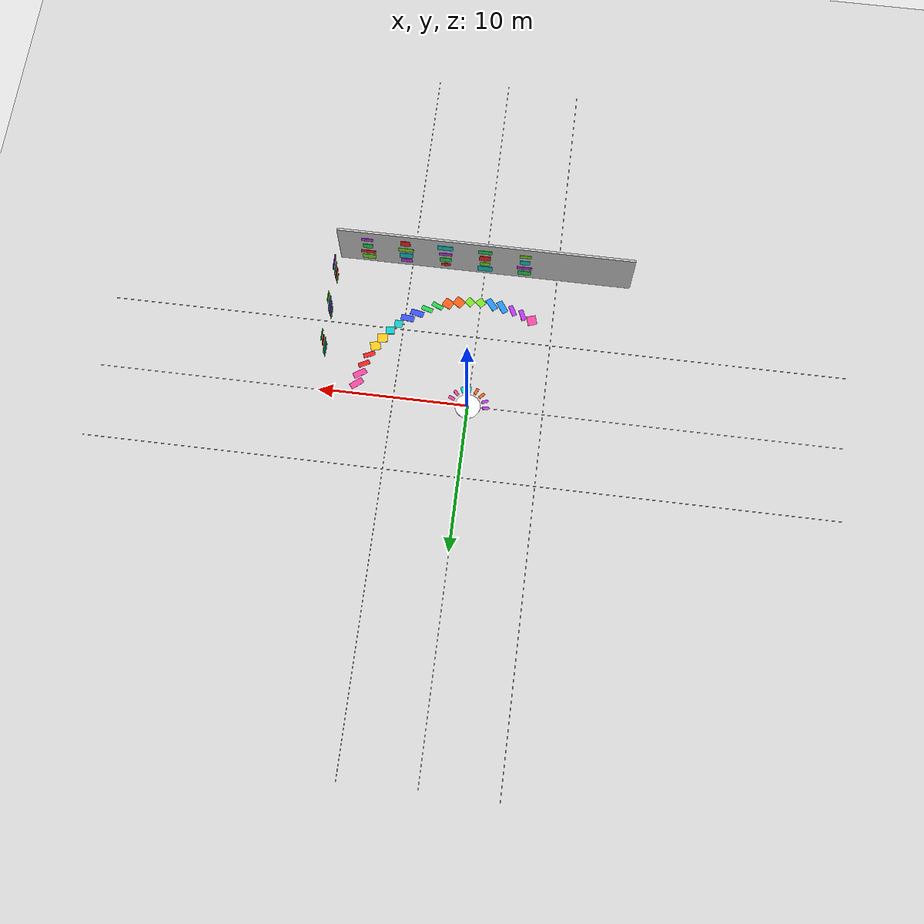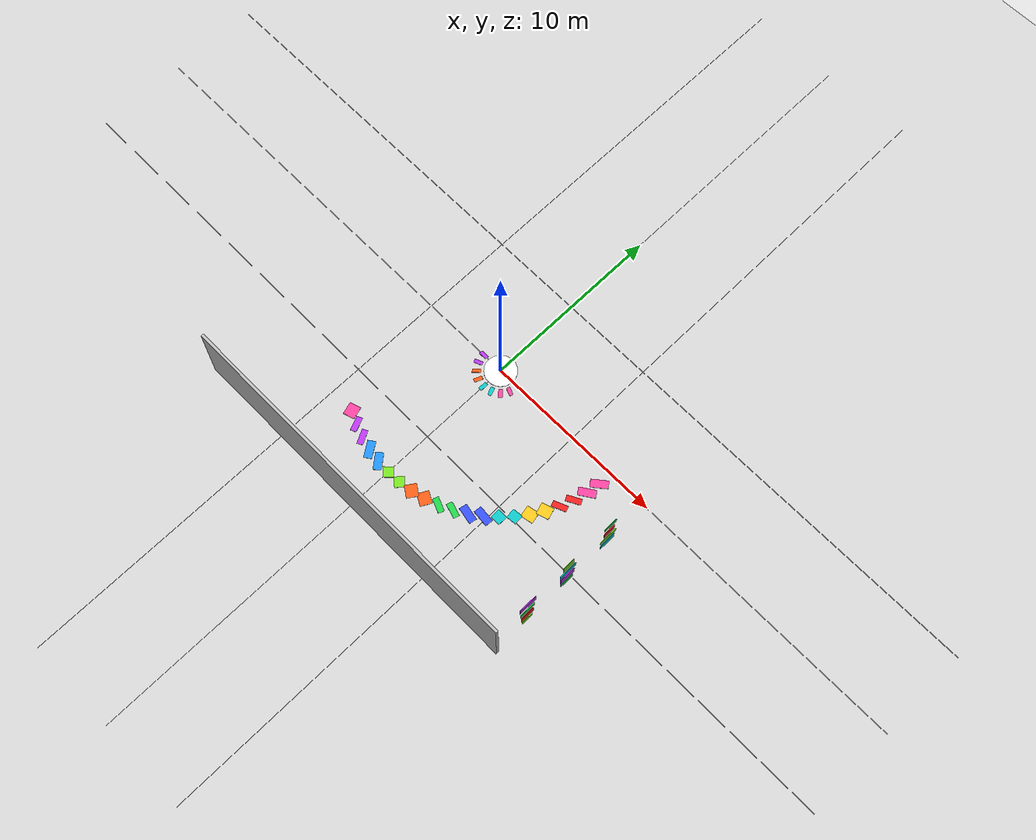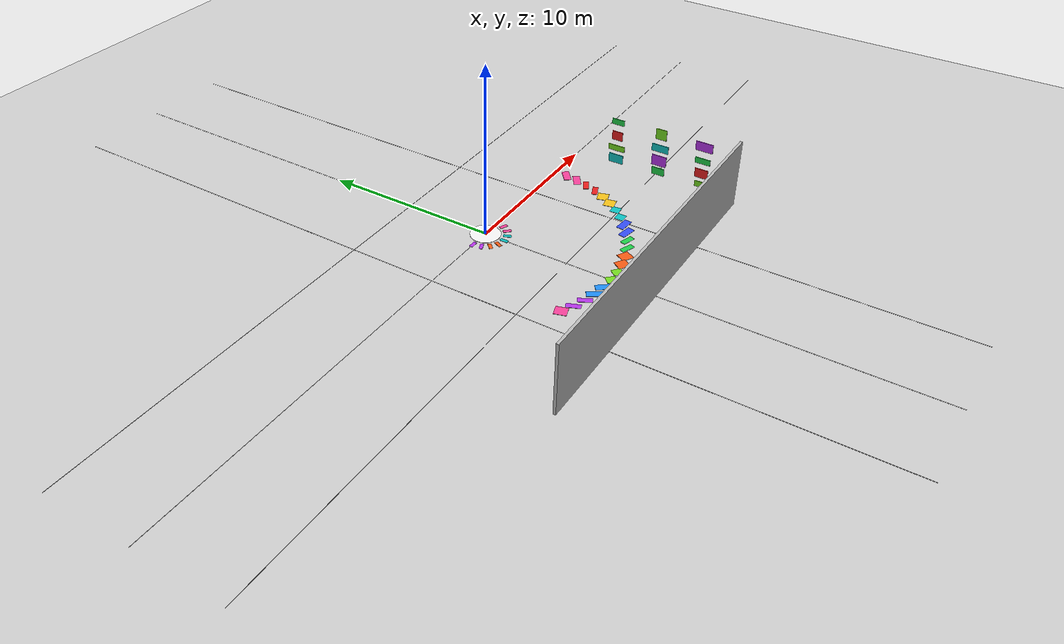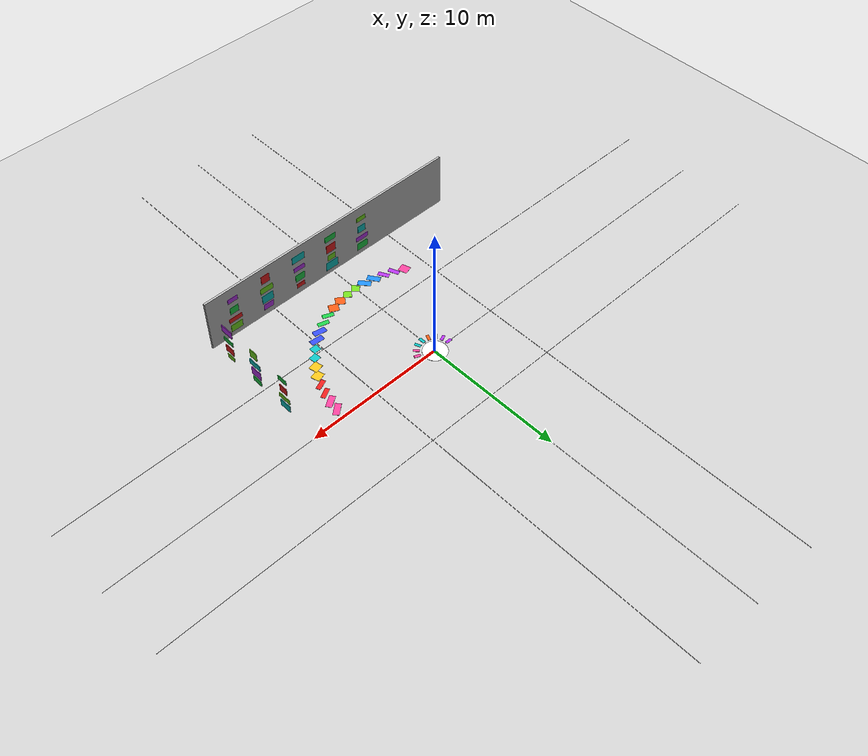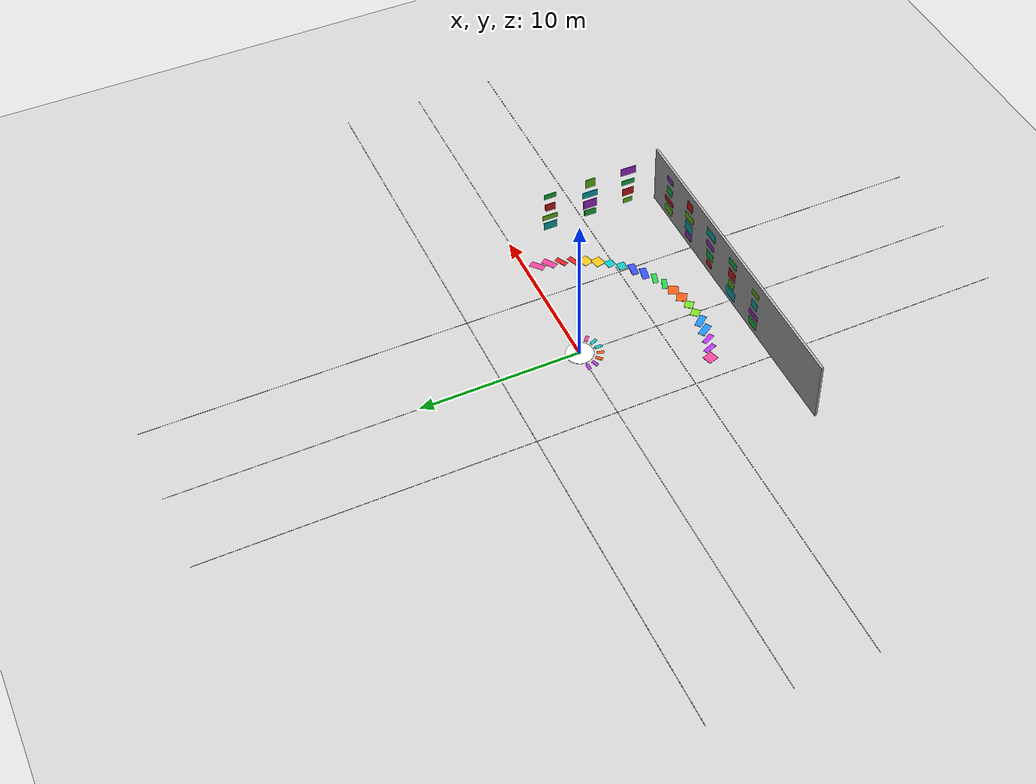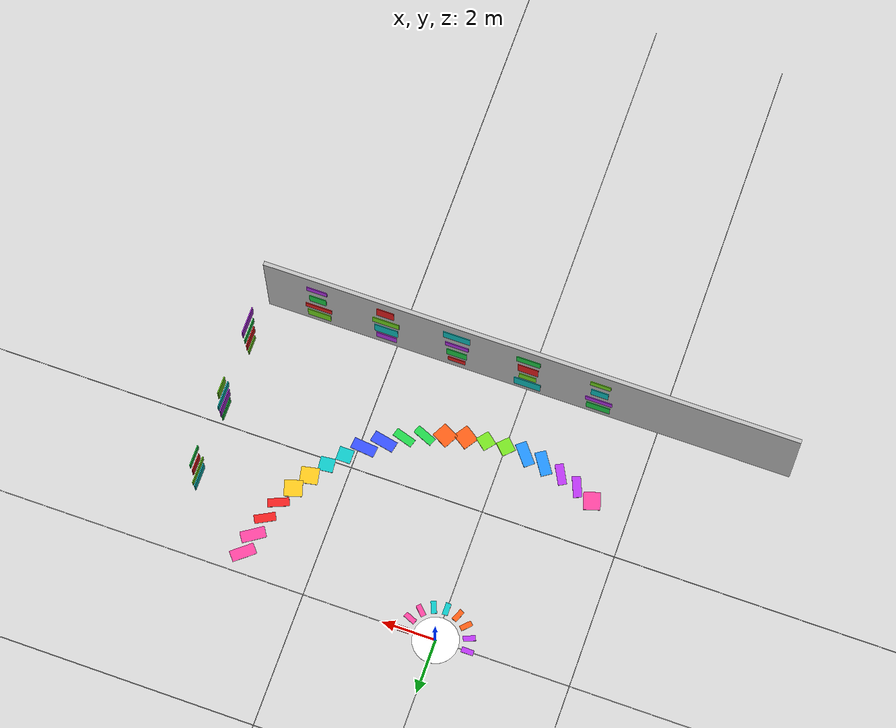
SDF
<sdf version="1.9">
 <world name="vio_marker_arena_double">
  <model name="ground_plane">
   <static>true</static>
   <link name="link">
    <collision name="collision">
     <geometry><plane><normal>0 0 1</normal><size>1 1</size></plane></geometry>
    </collision>
    <visual name="visual">
     <geometry><plane><normal>0 0 1</normal><size>500 500</size></plane></geometry>
     <material>
      <ambient>0.8 0.8 0.8 1</ambient>
      <diffuse>0.8 0.8 0.8 1</diffuse>
      <specular>0.8 0.8 0.8 1</specular>
     </material>
    </visual>
    <inertial>
     <mass>1</mass>
     <inertia><ixx>1</ixx><ixy>0</ixy><ixz>0</ixz><iyy>1</iyy><iyz>0</iyz><izz>1</izz></inertia>
    </inertial>
   </link>
  </model>
  <model name="visual_grid">
   <static>true</static>
   <pose>0 0 0.01 0 0 0</pose>
   <link name="grid_link">
    <visual name="x_line_1">
     <geometry><box><size>50 0.02 0.01</size></box></geometry>
     <material><ambient>0.7 0.7 0.7 1</ambient><diffuse>0.7 0.7 0.7 1</diffuse></material>
    </visual>
    <visual name="y_line_1">
     <pose>0 0 0 0 0 1.5708</pose>
     <geometry><box><size>50 0.02 0.01</size></box></geometry>
     <material><ambient>0.7 0.7 0.7 1</ambient><diffuse>0.7 0.7 0.7 1</diffuse></material>
    </visual>
    <visual name="x_line_5">
     <pose>0 5 0 0 0 0</pose>
     <geometry><box><size>50 0.02 0.01</size></box></geometry>
     <material><ambient>0.5 0.5 0.5 1</ambient><diffuse>0.5 0.5 0.5 1</diffuse></material>
    </visual>
    <visual name="x_line_minus5">
     <pose>0 -5 0 0 0 0</pose>
     <geometry><box><size>50 0.02 0.01</size></box></geometry>
     <material><ambient>0.5 0.5 0.5 1</ambient><diffuse>0.5 0.5 0.5 1</diffuse></material>
    </visual>
    <visual name="y_line_5">
     <pose>5 0 0 0 0 1.5708</pose>
     <geometry><box><size>50 0.02 0.01</size></box></geometry>
     <material><ambient>0.5 0.5 0.5 1</ambient><diffuse>0.5 0.5 0.5 1</diffuse></material>
    </visual>
    <visual name="y_line_minus5">
     <pose>-5 0 0 0 0 1.5708</pose>
     <geometry><box><size>50 0.02 0.01</size></box></geometry>
     <material><ambient>0.5 0.5 0.5 1</ambient><diffuse>0.5 0.5 0.5 1</diffuse></material>
    </visual>
   </link>
  </model>
  <model name="vio_wall_south">
   <static>true</static>
   <pose>0.0000 -10.0000 2.0000 0.0000 0.0000 0.0000</pose>
   <link name="link">
    <collision name="collision"><geometry><box><size>20.0000 0.1500 4.0000</size></box></geometry></collision>
    <visual name="visual">
     <geometry><box><size>20.0000 0.1500 4.0000</size></box></geometry>
     <material>
      <ambient>0.720 0.720 0.720 1.000</ambient>
      <diffuse>0.720 0.720 0.720 1.000</diffuse>
      <specular>0.10 0.10 0.10 1</specular>
      <emissive>0 0 0 1</emissive>
     </material>
    </visual>
   </link>
  </model>
  <model name="vio_panel_south_0_2">
   <static>true</static>
   <pose>-2.7000 -9.9190 0.6500 0.0000 0.0000 0.0000</pose>
   <link name="link">
    <visual name="visual">
     <geometry><box><size>0.8900 0.0350 0.5500</size></box></geometry>
     <material>
      <ambient>0.120 0.800 0.280 1.000</ambient>
      <diffuse>0.120 0.800 0.280 1.000</diffuse>
      <specular>0.10 0.10 0.10 1</specular>
      <emissive>0 0 0 1</emissive>
     </material>
    </visual>
   </link>
  </model>
  <model name="vio_panel_south_0_3">
   <static>true</static>
   <pose>0.0000 -9.9190 0.6500 0.0000 0.0000 0.0000</pose>
   <link name="link">
    <visual name="visual">
     <geometry><box><size>1.0100 0.0350 0.6500</size></box></geometry>
     <material>
      <ambient>0.050 0.750 0.750 1.000</ambient>
      <diffuse>0.050 0.750 0.750 1.000</diffuse>
      <specular>0.10 0.10 0.10 1</specular>
      <emissive>0 0 0 1</emissive>
     </material>
    </visual>
   </link>
  </model>
  <model name="vio_panel_south_0_4">
   <static>true</static>
   <pose>2.7000 -9.9190 0.6500 0.0000 0.0000 0.0000</pose>
   <link name="link">
    <visual name="visual">
     <geometry><box><size>0.6500 0.0350 0.3500</size></box></geometry>
     <material>
      <ambient>0.900 0.120 0.120 1.000</ambient>
      <diffuse>0.900 0.120 0.120 1.000</diffuse>
      <specular>0.10 0.10 0.10 1</specular>
      <emissive>0 0 0 1</emissive>
     </material>
    </visual>
   </link>
  </model>
  <model name="vio_panel_south_0_5">
   <static>true</static>
   <pose>5.4000 -9.9190 0.6500 0.0000 0.0000 0.0000</pose>
   <link name="link">
    <visual name="visual">
     <geometry><box><size>0.7700 0.0350 0.4500</size></box></geometry>
     <material>
      <ambient>0.700 0.200 0.900 1.000</ambient>
      <diffuse>0.700 0.200 0.900 1.000</diffuse>
      <specular>0.10 0.10 0.10 1</specular>
      <emissive>0 0 0 1</emissive>
     </material>
    </visual>
   </link>
  </model>
  <model name="vio_panel_south_0_6">
   <static>true</static>
   <pose>8.0000 -9.9190 0.6500 0.0000 0.0000 0.0000</pose>
   <link name="link">
    <visual name="visual">
     <geometry><box><size>0.8900 0.0350 0.5500</size></box></geometry>
     <material>
      <ambient>0.450 0.850 0.120 1.000</ambient>
      <diffuse>0.450 0.850 0.120 1.000</diffuse>
      <specular>0.10 0.10 0.10 1</specular>
      <emissive>0 0 0 1</emissive>
     </material>
    </visual>
   </link>
  </model>
  <model name="vio_panel_south_1_2">
   <static>true</static>
   <pose>-2.7000 -9.9190 1.3500 0.0000 0.0000 0.0000</pose>
   <link name="link">
    <visual name="visual">
     <geometry><box><size>1.0100 0.0350 0.3500</size></box></geometry>
     <material>
      <ambient>0.700 0.200 0.900 1.000</ambient>
      <diffuse>0.700 0.200 0.900 1.000</diffuse>
      <specular>0.10 0.10 0.10 1</specular>
      <emissive>0 0 0 1</emissive>
     </material>
    </visual>
   </link>
  </model>
  <model name="vio_panel_south_1_3">
   <static>true</static>
   <pose>0.0000 -9.9190 1.3500 0.0000 0.0000 0.0000</pose>
   <link name="link">
    <visual name="visual">
     <geometry><box><size>0.6500 0.0350 0.4500</size></box></geometry>
     <material>
      <ambient>0.450 0.850 0.120 1.000</ambient>
      <diffuse>0.450 0.850 0.120 1.000</diffuse>
      <specular>0.10 0.10 0.10 1</specular>
      <emissive>0 0 0 1</emissive>
     </material>
    </visual>
   </link>
  </model>
  <model name="vio_panel_south_1_4">
   <static>true</static>
   <pose>2.7000 -9.9190 1.3500 0.0000 0.0000 0.0000</pose>
   <link name="link">
    <visual name="visual">
     <geometry><box><size>0.7700 0.0350 0.5500</size></box></geometry>
     <material>
      <ambient>0.120 0.800 0.280 1.000</ambient>
      <diffuse>0.120 0.800 0.280 1.000</diffuse>
      <specular>0.10 0.10 0.10 1</specular>
      <emissive>0 0 0 1</emissive>
     </material>
    </visual>
   </link>
  </model>
  <model name="vio_panel_south_1_5">
   <static>true</static>
   <pose>5.4000 -9.9190 1.3500 0.0000 0.0000 0.0000</pose>
   <link name="link">
    <visual name="visual">
     <geometry><box><size>0.8900 0.0350 0.6500</size></box></geometry>
     <material>
      <ambient>0.050 0.750 0.750 1.000</ambient>
      <diffuse>0.050 0.750 0.750 1.000</diffuse>
      <specular>0.10 0.10 0.10 1</specular>
      <emissive>0 0 0 1</emissive>
     </material>
    </visual>
   </link>
  </model>
  <model name="vio_panel_south_1_6">
   <static>true</static>
   <pose>8.0000 -9.9190 1.3500 0.0000 0.0000 0.0000</pose>
   <link name="link">
    <visual name="visual">
     <geometry><box><size>1.0100 0.0350 0.3500</size></box></geometry>
     <material>
      <ambient>0.900 0.120 0.120 1.000</ambient>
      <diffuse>0.900 0.120 0.120 1.000</diffuse>
      <specular>0.10 0.10 0.10 1</specular>
      <emissive>0 0 0 1</emissive>
     </material>
    </visual>
   </link>
  </model>
  <model name="vio_panel_south_2_2">
   <static>true</static>
   <pose>-2.7000 -9.9190 2.1500 0.0000 0.0000 0.0000</pose>
   <link name="link">
    <visual name="visual">
     <geometry><box><size>0.6500 0.0350 0.5500</size></box></geometry>
     <material>
      <ambient>0.050 0.750 0.750 1.000</ambient>
      <diffuse>0.050 0.750 0.750 1.000</diffuse>
      <specular>0.10 0.10 0.10 1</specular>
      <emissive>0 0 0 1</emissive>
     </material>
    </visual>
   </link>
  </model>
  <model name="vio_panel_south_2_3">
   <static>true</static>
   <pose>0.0000 -9.9190 2.1500 0.0000 0.0000 0.0000</pose>
   <link name="link">
    <visual name="visual">
     <geometry><box><size>0.7700 0.0350 0.6500</size></box></geometry>
     <material>
      <ambient>0.900 0.120 0.120 1.000</ambient>
      <diffuse>0.900 0.120 0.120 1.000</diffuse>
      <specular>0.10 0.10 0.10 1</specular>
      <emissive>0 0 0 1</emissive>
     </material>
    </visual>
   </link>
  </model>
  <model name="vio_panel_south_2_4">
   <static>true</static>
   <pose>2.7000 -9.9190 2.1500 0.0000 0.0000 0.0000</pose>
   <link name="link">
    <visual name="visual">
     <geometry><box><size>0.8900 0.0350 0.3500</size></box></geometry>
     <material>
      <ambient>0.700 0.200 0.900 1.000</ambient>
      <diffuse>0.700 0.200 0.900 1.000</diffuse>
      <specular>0.10 0.10 0.10 1</specular>
      <emissive>0 0 0 1</emissive>
     </material>
    </visual>
   </link>
  </model>
  <model name="vio_panel_south_2_5">
   <static>true</static>
   <pose>5.4000 -9.9190 2.1500 0.0000 0.0000 0.0000</pose>
   <link name="link">
    <visual name="visual">
     <geometry><box><size>1.0100 0.0350 0.4500</size></box></geometry>
     <material>
      <ambient>0.450 0.850 0.120 1.000</ambient>
      <diffuse>0.450 0.850 0.120 1.000</diffuse>
      <specular>0.10 0.10 0.10 1</specular>
      <emissive>0 0 0 1</emissive>
     </material>
    </visual>
   </link>
  </model>
  <model name="vio_panel_south_2_6">
   <static>true</static>
   <pose>8.0000 -9.9190 2.1500 0.0000 0.0000 0.0000</pose>
   <link name="link">
    <visual name="visual">
     <geometry><box><size>0.6500 0.0350 0.5500</size></box></geometry>
     <material>
      <ambient>0.120 0.800 0.280 1.000</ambient>
      <diffuse>0.120 0.800 0.280 1.000</diffuse>
      <specular>0.10 0.10 0.10 1</specular>
      <emissive>0 0 0 1</emissive>
     </material>
    </visual>
   </link>
  </model>
  <model name="vio_panel_south_3_2">
   <static>true</static>
   <pose>-2.7000 -9.9190 3.0500 0.0000 0.0000 0.0000</pose>
   <link name="link">
    <visual name="visual">
     <geometry><box><size>0.7700 0.0350 0.3500</size></box></geometry>
     <material>
      <ambient>0.450 0.850 0.120 1.000</ambient>
      <diffuse>0.450 0.850 0.120 1.000</diffuse>
      <specular>0.10 0.10 0.10 1</specular>
      <emissive>0 0 0 1</emissive>
     </material>
    </visual>
   </link>
  </model>
  <model name="vio_panel_south_3_3">
   <static>true</static>
   <pose>0.0000 -9.9190 3.0500 0.0000 0.0000 0.0000</pose>
   <link name="link">
    <visual name="visual">
     <geometry><box><size>0.8900 0.0350 0.4500</size></box></geometry>
     <material>
      <ambient>0.120 0.800 0.280 1.000</ambient>
      <diffuse>0.120 0.800 0.280 1.000</diffuse>
      <specular>0.10 0.10 0.10 1</specular>
      <emissive>0 0 0 1</emissive>
     </material>
    </visual>
   </link>
  </model>
  <model name="vio_panel_south_3_4">
   <static>true</static>
   <pose>2.7000 -9.9190 3.0500 0.0000 0.0000 0.0000</pose>
   <link name="link">
    <visual name="visual">
     <geometry><box><size>1.0100 0.0350 0.5500</size></box></geometry>
     <material>
      <ambient>0.050 0.750 0.750 1.000</ambient>
      <diffuse>0.050 0.750 0.750 1.000</diffuse>
      <specular>0.10 0.10 0.10 1</specular>
      <emissive>0 0 0 1</emissive>
     </material>
    </visual>
   </link>
  </model>
  <model name="vio_panel_south_3_5">
   <static>true</static>
   <pose>5.4000 -9.9190 3.0500 0.0000 0.0000 0.0000</pose>
   <link name="link">
    <visual name="visual">
     <geometry><box><size>0.6500 0.0350 0.6500</size></box></geometry>
     <material>
      <ambient>0.900 0.120 0.120 1.000</ambient>
      <diffuse>0.900 0.120 0.120 1.000</diffuse>
      <specular>0.10 0.10 0.10 1</specular>
      <emissive>0 0 0 1</emissive>
     </material>
    </visual>
   </link>
  </model>
  <model name="vio_panel_south_3_6">
   <static>true</static>
   <pose>8.0000 -9.9190 3.0500 0.0000 0.0000 0.0000</pose>
   <link name="link">
    <visual name="visual">
     <geometry><box><size>0.7700 0.0350 0.3500</size></box></geometry>
     <material>
      <ambient>0.700 0.200 0.900 1.000</ambient>
      <diffuse>0.700 0.200 0.900 1.000</diffuse>
      <specular>0.10 0.10 0.10 1</specular>
      <emissive>0 0 0 1</emissive>
     </material>
    </visual>
   </link>
  </model>
  <model name="vio_panel_east_0_0">
   <static>true</static>
   <pose>9.9190 -8.0000 0.6500 0.0000 0.0000 0.0000</pose>
   <link name="link">
    <visual name="visual">
     <geometry><box><size>0.0350 0.6500 0.3500</size></box></geometry>
     <material>
      <ambient>0.450 0.850 0.120 1.000</ambient>
      <diffuse>0.450 0.850 0.120 1.000</diffuse>
      <specular>0.10 0.10 0.10 1</specular>
      <emissive>0 0 0 1</emissive>
     </material>
    </visual>
   </link>
  </model>
  <model name="vio_panel_east_0_1">
   <static>true</static>
   <pose>9.9190 -5.4000 0.6500 0.0000 0.0000 0.0000</pose>
   <link name="link">
    <visual name="visual">
     <geometry><box><size>0.0350 0.7700 0.4500</size></box></geometry>
     <material>
      <ambient>0.120 0.800 0.280 1.000</ambient>
      <diffuse>0.120 0.800 0.280 1.000</diffuse>
      <specular>0.10 0.10 0.10 1</specular>
      <emissive>0 0 0 1</emissive>
     </material>
    </visual>
   </link>
  </model>
  <model name="vio_panel_east_0_2">
   <static>true</static>
   <pose>9.9190 -2.7000 0.6500 0.0000 0.0000 0.0000</pose>
   <link name="link">
    <visual name="visual">
     <geometry><box><size>0.0350 0.8900 0.5500</size></box></geometry>
     <material>
      <ambient>0.050 0.750 0.750 1.000</ambient>
      <diffuse>0.050 0.750 0.750 1.000</diffuse>
      <specular>0.10 0.10 0.10 1</specular>
      <emissive>0 0 0 1</emissive>
     </material>
    </visual>
   </link>
  </model>
  <model name="vio_panel_east_1_0">
   <static>true</static>
   <pose>9.9190 -8.0000 1.3500 0.0000 0.0000 0.0000</pose>
   <link name="link">
    <visual name="visual">
     <geometry><box><size>0.0350 0.7700 0.5500</size></box></geometry>
     <material>
      <ambient>0.900 0.120 0.120 1.000</ambient>
      <diffuse>0.900 0.120 0.120 1.000</diffuse>
      <specular>0.10 0.10 0.10 1</specular>
      <emissive>0 0 0 1</emissive>
     </material>
    </visual>
   </link>
  </model>
  <model name="vio_panel_east_1_1">
   <static>true</static>
   <pose>9.9190 -5.4000 1.3500 0.0000 0.0000 0.0000</pose>
   <link name="link">
    <visual name="visual">
     <geometry><box><size>0.0350 0.8900 0.6500</size></box></geometry>
     <material>
      <ambient>0.700 0.200 0.900 1.000</ambient>
      <diffuse>0.700 0.200 0.900 1.000</diffuse>
      <specular>0.10 0.10 0.10 1</specular>
      <emissive>0 0 0 1</emissive>
     </material>
    </visual>
   </link>
  </model>
  <model name="vio_panel_east_1_2">
   <static>true</static>
   <pose>9.9190 -2.7000 1.3500 0.0000 0.0000 0.0000</pose>
   <link name="link">
    <visual name="visual">
     <geometry><box><size>0.0350 1.0100 0.3500</size></box></geometry>
     <material>
      <ambient>0.450 0.850 0.120 1.000</ambient>
      <diffuse>0.450 0.850 0.120 1.000</diffuse>
      <specular>0.10 0.10 0.10 1</specular>
      <emissive>0 0 0 1</emissive>
     </material>
    </visual>
   </link>
  </model>
  <model name="vio_panel_east_2_0">
   <static>true</static>
   <pose>9.9190 -8.0000 2.1500 0.0000 0.0000 0.0000</pose>
   <link name="link">
    <visual name="visual">
     <geometry><box><size>0.0350 0.8900 0.3500</size></box></geometry>
     <material>
      <ambient>0.120 0.800 0.280 1.000</ambient>
      <diffuse>0.120 0.800 0.280 1.000</diffuse>
      <specular>0.10 0.10 0.10 1</specular>
      <emissive>0 0 0 1</emissive>
     </material>
    </visual>
   </link>
  </model>
  <model name="vio_panel_east_2_1">
   <static>true</static>
   <pose>9.9190 -5.4000 2.1500 0.0000 0.0000 0.0000</pose>
   <link name="link">
    <visual name="visual">
     <geometry><box><size>0.0350 1.0100 0.4500</size></box></geometry>
     <material>
      <ambient>0.050 0.750 0.750 1.000</ambient>
      <diffuse>0.050 0.750 0.750 1.000</diffuse>
      <specular>0.10 0.10 0.10 1</specular>
      <emissive>0 0 0 1</emissive>
     </material>
    </visual>
   </link>
  </model>
  <model name="vio_panel_east_2_2">
   <static>true</static>
   <pose>9.9190 -2.7000 2.1500 0.0000 0.0000 0.0000</pose>
   <link name="link">
    <visual name="visual">
     <geometry><box><size>0.0350 0.6500 0.5500</size></box></geometry>
     <material>
      <ambient>0.900 0.120 0.120 1.000</ambient>
      <diffuse>0.900 0.120 0.120 1.000</diffuse>
      <specular>0.10 0.10 0.10 1</specular>
      <emissive>0 0 0 1</emissive>
     </material>
    </visual>
   </link>
  </model>
  <model name="vio_panel_east_3_0">
   <static>true</static>
   <pose>9.9190 -8.0000 3.0500 0.0000 0.0000 0.0000</pose>
   <link name="link">
    <visual name="visual">
     <geometry><box><size>0.0350 1.0100 0.5500</size></box></geometry>
     <material>
      <ambient>0.700 0.200 0.900 1.000</ambient>
      <diffuse>0.700 0.200 0.900 1.000</diffuse>
      <specular>0.10 0.10 0.10 1</specular>
      <emissive>0 0 0 1</emissive>
     </material>
    </visual>
   </link>
  </model>
  <model name="vio_panel_east_3_1">
   <static>true</static>
   <pose>9.9190 -5.4000 3.0500 0.0000 0.0000 0.0000</pose>
   <link name="link">
    <visual name="visual">
     <geometry><box><size>0.0350 0.6500 0.6500</size></box></geometry>
     <material>
      <ambient>0.450 0.850 0.120 1.000</ambient>
      <diffuse>0.450 0.850 0.120 1.000</diffuse>
      <specular>0.10 0.10 0.10 1</specular>
      <emissive>0 0 0 1</emissive>
     </material>
    </visual>
   </link>
  </model>
  <model name="vio_panel_east_3_2">
   <static>true</static>
   <pose>9.9190 -2.7000 3.0500 0.0000 0.0000 0.0000</pose>
   <link name="link">
    <visual name="visual">
     <geometry><box><size>0.0350 0.7700 0.3500</size></box></geometry>
     <material>
      <ambient>0.120 0.800 0.280 1.000</ambient>
      <diffuse>0.120 0.800 0.280 1.000</diffuse>
      <specular>0.10 0.10 0.10 1</specular>
      <emissive>0 0 0 1</emissive>
     </material>
    </visual>
   </link>
  </model>
  <model name="vio_floor_marker_22">
   <static>true</static>
   <pose>-2.9084 -7.0215 0.0120 0.0000 0.0000 5.1051</pose>
   <link name="link">
    <visual name="visual">
     <geometry><box><size>0.7900 0.3200 0.0180</size></box></geometry>
     <material>
      <ambient>0.700 0.200 0.900 1.000</ambient>
      <diffuse>0.700 0.200 0.900 1.000</diffuse>
      <specular>0.10 0.10 0.10 1</specular>
      <emissive>0 0 0 1</emissive>
     </material>
    </visual>
   </link>
  </model>
  <model name="vio_floor_marker_23">
   <static>true</static>
   <pose>-1.4827 -7.4540 0.0120 0.0000 0.0000 5.3014</pose>
   <link name="link">
    <visual name="visual">
     <geometry><box><size>0.9100 0.4200 0.0180</size></box></geometry>
     <material>
      <ambient>0.120 0.550 0.950 1.000</ambient>
      <diffuse>0.120 0.550 0.950 1.000</diffuse>
      <specular>0.10 0.10 0.10 1</specular>
      <emissive>0 0 0 1</emissive>
     </material>
    </visual>
   </link>
  </model>
  <model name="vio_floor_marker_24">
   <static>true</static>
   <pose>-0.0000 -7.6000 0.0120 0.0000 0.0000 5.4978</pose>
   <link name="link">
    <visual name="visual">
     <geometry><box><size>0.5500 0.5200 0.0180</size></box></geometry>
     <material>
      <ambient>0.450 0.850 0.120 1.000</ambient>
      <diffuse>0.450 0.850 0.120 1.000</diffuse>
      <specular>0.10 0.10 0.10 1</specular>
      <emissive>0 0 0 1</emissive>
     </material>
    </visual>
   </link>
  </model>
  <model name="vio_floor_marker_25">
   <static>true</static>
   <pose>1.4827 -7.4540 0.0120 0.0000 0.0000 5.6941</pose>
   <link name="link">
    <visual name="visual">
     <geometry><box><size>0.6700 0.6200 0.0180</size></box></geometry>
     <material>
      <ambient>0.950 0.350 0.080 1.000</ambient>
      <diffuse>0.950 0.350 0.080 1.000</diffuse>
      <specular>0.10 0.10 0.10 1</specular>
      <emissive>0 0 0 1</emissive>
     </material>
    </visual>
   </link>
  </model>
  <model name="vio_floor_marker_26">
   <static>true</static>
   <pose>2.9084 -7.0215 0.0120 0.0000 0.0000 5.8905</pose>
   <link name="link">
    <visual name="visual">
     <geometry><box><size>0.7900 0.3200 0.0180</size></box></geometry>
     <material>
      <ambient>0.120 0.800 0.280 1.000</ambient>
      <diffuse>0.120 0.800 0.280 1.000</diffuse>
      <specular>0.10 0.10 0.10 1</specular>
      <emissive>0 0 0 1</emissive>
     </material>
    </visual>
   </link>
  </model>
  <model name="vio_floor_marker_27">
   <static>true</static>
   <pose>4.2223 -6.3192 0.0120 0.0000 0.0000 6.0868</pose>
   <link name="link">
    <visual name="visual">
     <geometry><box><size>0.9100 0.4200 0.0180</size></box></geometry>
     <material>
      <ambient>0.200 0.300 0.950 1.000</ambient>
      <diffuse>0.200 0.300 0.950 1.000</diffuse>
      <specular>0.10 0.10 0.10 1</specular>
      <emissive>0 0 0 1</emissive>
     </material>
    </visual>
   </link>
  </model>
  <model name="vio_floor_marker_28">
   <static>true</static>
   <pose>5.3740 -5.3740 0.0120 0.0000 0.0000 6.2832</pose>
   <link name="link">
    <visual name="visual">
     <geometry><box><size>0.5500 0.5200 0.0180</size></box></geometry>
     <material>
      <ambient>0.050 0.750 0.750 1.000</ambient>
      <diffuse>0.050 0.750 0.750 1.000</diffuse>
      <specular>0.10 0.10 0.10 1</specular>
      <emissive>0 0 0 1</emissive>
     </material>
    </visual>
   </link>
  </model>
  <model name="vio_floor_marker_29">
   <static>true</static>
   <pose>6.3192 -4.2223 0.0120 0.0000 0.0000 6.4795</pose>
   <link name="link">
    <visual name="visual">
     <geometry><box><size>0.6700 0.6200 0.0180</size></box></geometry>
     <material>
      <ambient>0.950 0.750 0.100 1.000</ambient>
      <diffuse>0.950 0.750 0.100 1.000</diffuse>
      <specular>0.10 0.10 0.10 1</specular>
      <emissive>0 0 0 1</emissive>
     </material>
    </visual>
   </link>
  </model>
  <model name="vio_floor_marker_30">
   <static>true</static>
   <pose>7.0215 -2.9084 0.0120 0.0000 0.0000 6.6759</pose>
   <link name="link">
    <visual name="visual">
     <geometry><box><size>0.7900 0.3200 0.0180</size></box></geometry>
     <material>
      <ambient>0.900 0.120 0.120 1.000</ambient>
      <diffuse>0.900 0.120 0.120 1.000</diffuse>
      <specular>0.10 0.10 0.10 1</specular>
      <emissive>0 0 0 1</emissive>
     </material>
    </visual>
   </link>
  </model>
  <model name="vio_floor_marker_31">
   <static>true</static>
   <pose>7.4540 -1.4827 0.0120 0.0000 0.0000 6.8722</pose>
   <link name="link">
    <visual name="visual">
     <geometry><box><size>0.9100 0.4200 0.0180</size></box></geometry>
     <material>
      <ambient>0.950 0.250 0.600 1.000</ambient>
      <diffuse>0.950 0.250 0.600 1.000</diffuse>
      <specular>0.10 0.10 0.10 1</specular>
      <emissive>0 0 0 1</emissive>
     </material>
    </visual>
   </link>
  </model>
  <model name="vio_center_target">
   <static>true</static>
   <pose>0.0000 0.0000 0.0120 0.0000 0.0000 0.0000</pose>
   <link name="link">
    <visual name="visual">
     <geometry><cylinder><radius>0.8500</radius><length>0.0200</length></cylinder></geometry>
     <material>
      <ambient>0.950 0.950 0.950 1.000</ambient>
      <diffuse>0.950 0.950 0.950 1.000</diffuse>
      <specular>0.10 0.10 0.10 1</specular>
      <emissive>0 0 0 1</emissive>
     </material>
    </visual>
   </link>
  </model>
  <model name="vio_center_marker_0">
   <static>true</static>
   <pose>1.2000 0.0000 0.0130 0.0000 0.0000 0.0000</pose>
   <link name="link">
    <visual name="visual">
     <geometry><box><size>0.4500 0.2000 0.0200</size></box></geometry>
     <material>
      <ambient>0.900 0.120 0.120 1.000</ambient>
      <diffuse>0.900 0.120 0.120 1.000</diffuse>
      <specular>0.10 0.10 0.10 1</specular>
      <emissive>0 0 0 1</emissive>
     </material>
    </visual>
   </link>
  </model>
  <model name="vio_center_marker_4">
   <static>true</static>
   <pose>-1.2000 0.0000 0.0130 0.0000 0.0000 3.1416</pose>
   <link name="link">
    <visual name="visual">
     <geometry><box><size>0.4500 0.2000 0.0200</size></box></geometry>
     <material>
      <ambient>0.700 0.200 0.900 1.000</ambient>
      <diffuse>0.700 0.200 0.900 1.000</diffuse>
      <specular>0.10 0.10 0.10 1</specular>
      <emissive>0 0 0 1</emissive>
     </material>
    </visual>
   </link>
  </model>
  <model name="vio_center_marker_5">
   <static>true</static>
   <pose>-0.8485 -0.8485 0.0130 0.0000 0.0000 3.9270</pose>
   <link name="link">
    <visual name="visual">
     <geometry><box><size>0.4500 0.2000 0.0200</size></box></geometry>
     <material>
      <ambient>0.950 0.350 0.080 1.000</ambient>
      <diffuse>0.950 0.350 0.080 1.000</diffuse>
      <specular>0.10 0.10 0.10 1</specular>
      <emissive>0 0 0 1</emissive>
     </material>
    </visual>
   </link>
  </model>
  <model name="vio_center_marker_6">
   <static>true</static>
   <pose>-0.0000 -1.2000 0.0130 0.0000 0.0000 4.7124</pose>
   <link name="link">
    <visual name="visual">
     <geometry><box><size>0.4500 0.2000 0.0200</size></box></geometry>
     <material>
      <ambient>0.050 0.750 0.750 1.000</ambient>
      <diffuse>0.050 0.750 0.750 1.000</diffuse>
      <specular>0.10 0.10 0.10 1</specular>
      <emissive>0 0 0 1</emissive>
     </material>
    </visual>
   </link>
  </model>
  <model name="vio_center_marker_7">
   <static>true</static>
   <pose>0.8485 -0.8485 0.0130 0.0000 0.0000 5.4978</pose>
   <link name="link">
    <visual name="visual">
     <geometry><box><size>0.4500 0.2000 0.0200</size></box></geometry>
     <material>
      <ambient>0.950 0.250 0.600 1.000</ambient>
      <diffuse>0.950 0.250 0.600 1.000</diffuse>
      <specular>0.10 0.10 0.10 1</specular>
      <emissive>0 0 0 1</emissive>
     </material>
    </visual>
   </link>
  </model>
  <model name="vio_floor_marker_extra_21">
   <static>true</static>
   <pose>-3.5826 -6.7026 0.0120 0.0000 0.0000 5.0069</pose>
   <link name="link">
    <visual name="visual">
     <geometry><box><size>0.6700 0.6200 0.0180</size></box></geometry>
     <material>
      <ambient>0.950 0.250 0.600 1.000</ambient>
      <diffuse>0.950 0.250 0.600 1.000</diffuse>
      <specular>0.10 0.10 0.10 1</specular>
      <emissive>0 0 0 1</emissive>
     </material>
    </visual>
   </link>
  </model>
  <model name="vio_floor_marker_extra_22">
   <static>true</static>
   <pose>-2.2062 -7.2727 0.0120 0.0000 0.0000 5.2033</pose>
   <link name="link">
    <visual name="visual">
     <geometry><box><size>0.7900 0.3200 0.0180</size></box></geometry>
     <material>
      <ambient>0.700 0.200 0.900 1.000</ambient>
      <diffuse>0.700 0.200 0.900 1.000</diffuse>
      <specular>0.10 0.10 0.10 1</specular>
      <emissive>0 0 0 1</emissive>
     </material>
    </visual>
   </link>
  </model>
  <model name="vio_floor_marker_extra_23">
   <static>true</static>
   <pose>-0.7449 -7.5634 0.0120 0.0000 0.0000 5.3996</pose>
   <link name="link">
    <visual name="visual">
     <geometry><box><size>0.9100 0.4200 0.0180</size></box></geometry>
     <material>
      <ambient>0.120 0.550 0.950 1.000</ambient>
      <diffuse>0.120 0.550 0.950 1.000</diffuse>
      <specular>0.10 0.10 0.10 1</specular>
      <emissive>0 0 0 1</emissive>
     </material>
    </visual>
   </link>
  </model>
  <model name="vio_floor_marker_extra_24">
   <static>true</static>
   <pose>0.7449 -7.5634 0.0120 0.0000 0.0000 5.5960</pose>
   <link name="link">
    <visual name="visual">
     <geometry><box><size>0.5500 0.5200 0.0180</size></box></geometry>
     <material>
      <ambient>0.450 0.850 0.120 1.000</ambient>
      <diffuse>0.450 0.850 0.120 1.000</diffuse>
      <specular>0.10 0.10 0.10 1</specular>
      <emissive>0 0 0 1</emissive>
     </material>
    </visual>
   </link>
  </model>
  <model name="vio_floor_marker_extra_25">
   <static>true</static>
   <pose>2.2062 -7.2727 0.0120 0.0000 0.0000 5.7923</pose>
   <link name="link">
    <visual name="visual">
     <geometry><box><size>0.6700 0.6200 0.0180</size></box></geometry>
     <material>
      <ambient>0.950 0.350 0.080 1.000</ambient>
      <diffuse>0.950 0.350 0.080 1.000</diffuse>
      <specular>0.10 0.10 0.10 1</specular>
      <emissive>0 0 0 1</emissive>
     </material>
    </visual>
   </link>
  </model>
  <model name="vio_floor_marker_extra_26">
   <static>true</static>
   <pose>3.5826 -6.7026 0.0120 0.0000 0.0000 5.9887</pose>
   <link name="link">
    <visual name="visual">
     <geometry><box><size>0.7900 0.3200 0.0180</size></box></geometry>
     <material>
      <ambient>0.120 0.800 0.280 1.000</ambient>
      <diffuse>0.120 0.800 0.280 1.000</diffuse>
      <specular>0.10 0.10 0.10 1</specular>
      <emissive>0 0 0 1</emissive>
     </material>
    </visual>
   </link>
  </model>
  <model name="vio_floor_marker_extra_27">
   <static>true</static>
   <pose>4.8214 -5.8749 0.0120 0.0000 0.0000 6.1850</pose>
   <link name="link">
    <visual name="visual">
     <geometry><box><size>0.9100 0.4200 0.0180</size></box></geometry>
     <material>
      <ambient>0.200 0.300 0.950 1.000</ambient>
      <diffuse>0.200 0.300 0.950 1.000</diffuse>
      <specular>0.10 0.10 0.10 1</specular>
      <emissive>0 0 0 1</emissive>
     </material>
    </visual>
   </link>
  </model>
  <model name="vio_floor_marker_extra_28">
   <static>true</static>
   <pose>5.8749 -4.8214 0.0120 0.0000 0.0000 6.3814</pose>
   <link name="link">
    <visual name="visual">
     <geometry><box><size>0.5500 0.5200 0.0180</size></box></geometry>
     <material>
      <ambient>0.050 0.750 0.750 1.000</ambient>
      <diffuse>0.050 0.750 0.750 1.000</diffuse>
      <specular>0.10 0.10 0.10 1</specular>
      <emissive>0 0 0 1</emissive>
     </material>
    </visual>
   </link>
  </model>
  <model name="vio_floor_marker_extra_29">
   <static>true</static>
   <pose>6.7026 -3.5826 0.0120 0.0000 0.0000 6.5777</pose>
   <link name="link">
    <visual name="visual">
     <geometry><box><size>0.6700 0.6200 0.0180</size></box></geometry>
     <material>
      <ambient>0.950 0.750 0.100 1.000</ambient>
      <diffuse>0.950 0.750 0.100 1.000</diffuse>
      <specular>0.10 0.10 0.10 1</specular>
      <emissive>0 0 0 1</emissive>
     </material>
    </visual>
   </link>
  </model>
  <model name="vio_floor_marker_extra_30">
   <static>true</static>
   <pose>7.2727 -2.2062 0.0120 0.0000 0.0000 6.7741</pose>
   <link name="link">
    <visual name="visual">
     <geometry><box><size>0.7900 0.3200 0.0180</size></box></geometry>
     <material>
      <ambient>0.900 0.120 0.120 1.000</ambient>
      <diffuse>0.900 0.120 0.120 1.000</diffuse>
      <specular>0.10 0.10 0.10 1</specular>
      <emissive>0 0 0 1</emissive>
     </material>
    </visual>
   </link>
  </model>
  <model name="vio_floor_marker_extra_31">
   <static>true</static>
   <pose>7.5634 -0.7449 0.0120 0.0000 0.0000 6.9704</pose>
   <link name="link">
    <visual name="visual">
     <geometry><box><size>0.9100 0.4200 0.0180</size></box></geometry>
     <material>
      <ambient>0.950 0.250 0.600 1.000</ambient>
      <diffuse>0.950 0.250 0.600 1.000</diffuse>
      <specular>0.10 0.10 0.10 1</specular>
      <emissive>0 0 0 1</emissive>
     </material>
    </visual>
   </link>
  </model>
  <model name="vio_center_marker_extra_4">
   <static>true</static>
   <pose>-1.1087 -0.4592 0.0130 0.0000 0.0000 3.5343</pose>
   <link name="link">
    <visual name="visual">
     <geometry><box><size>0.4500 0.2000 0.0200</size></box></geometry>
     <material>
      <ambient>0.700 0.200 0.900 1.000</ambient>
      <diffuse>0.700 0.200 0.900 1.000</diffuse>
      <specular>0.10 0.10 0.10 1</specular>
      <emissive>0 0 0 1</emissive>
     </material>
    </visual>
   </link>
  </model>
  <model name="vio_center_marker_extra_5">
   <static>true</static>
   <pose>-0.4592 -1.1087 0.0130 0.0000 0.0000 4.3197</pose>
   <link name="link">
    <visual name="visual">
     <geometry><box><size>0.4500 0.2000 0.0200</size></box></geometry>
     <material>
      <ambient>0.950 0.350 0.080 1.000</ambient>
      <diffuse>0.950 0.350 0.080 1.000</diffuse>
      <specular>0.10 0.10 0.10 1</specular>
      <emissive>0 0 0 1</emissive>
     </material>
    </visual>
   </link>
  </model>
  <model name="vio_center_marker_extra_6">
   <static>true</static>
   <pose>0.4592 -1.1087 0.0130 0.0000 0.0000 5.1051</pose>
   <link name="link">
    <visual name="visual">
     <geometry><box><size>0.4500 0.2000 0.0200</size></box></geometry>
     <material>
      <ambient>0.050 0.750 0.750 1.000</ambient>
      <diffuse>0.050 0.750 0.750 1.000</diffuse>
      <specular>0.10 0.10 0.10 1</specular>
      <emissive>0 0 0 1</emissive>
     </material>
    </visual>
   </link>
  </model>
  <model name="vio_center_marker_extra_7">
   <static>true</static>
   <pose>1.1087 -0.4592 0.0130 0.0000 0.0000 5.8905</pose>
   <link name="link">
    <visual name="visual">
     <geometry><box><size>0.4500 0.2000 0.0200</size></box></geometry>
     <material>
      <ambient>0.950 0.250 0.600 1.000</ambient>
      <diffuse>0.950 0.250 0.600 1.000</diffuse>
      <specular>0.10 0.10 0.10 1</specular>
      <emissive>0 0 0 1</emissive>
     </material>
    </visual>
   </link>
  </model>
 </world>
</sdf>
